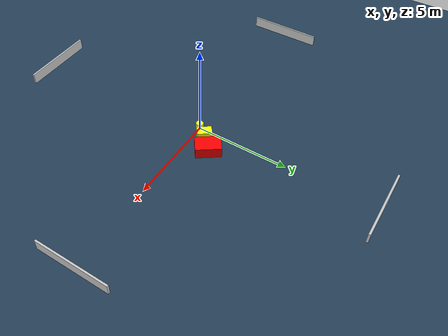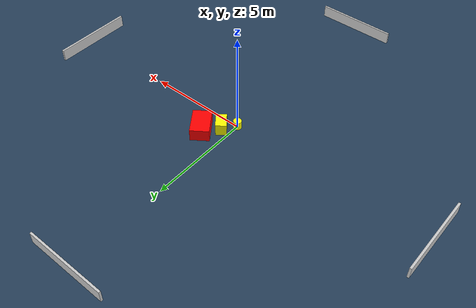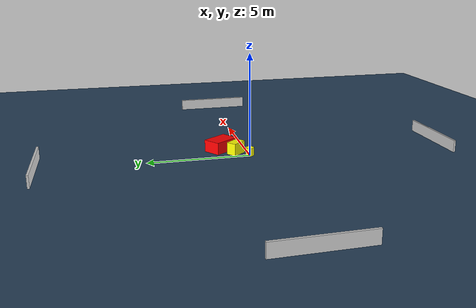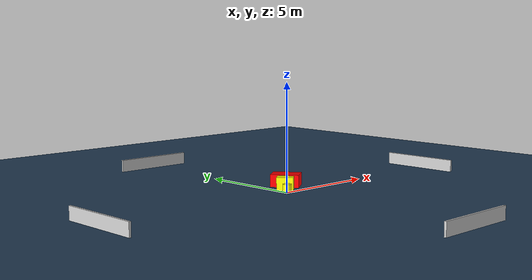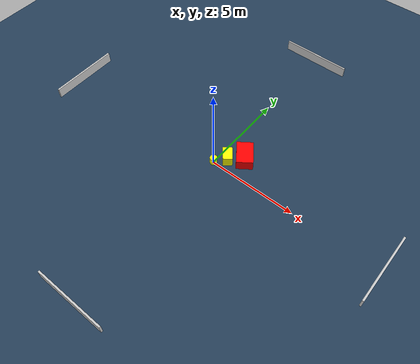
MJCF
<?xml version="1.0" ?>
<mujoco model="generated_environment">
  <option timestep="0.01" integrator="RK4" cone="elliptic"/>
  <default>
    <geom density="1"/>
  </default>
  <asset>
    <texture builtin="gradient" height="3072" name="skybox" rgb1="0.3 0.5 0.7" rgb2="0 0 0" type="skybox" width="512"/>
    <texture builtin="checker" height="300" name="groundplane" rgb1="0.2 0.3 0.4" rgb2="0.1 0.2 0.3" type="2d" width="300"/>
    <material name="groundplane" reflectance="0.2" texrepeat="5 5" texture="groundplane"/>
  </asset>
  <worldbody>
    <light dir="0 0 -1" directional="true" pos="0 0 1.5"/>
    <geom condim="3" friction="0.5 0.005 0.001" material="groundplane" name="floor" pos="0 0 0" size="0 0 0.05" type="plane"/>
    <body name="walls">
      <geom name="wall_1" condim="4" pos="-10.0 0.0 0.3" rgba="0.800000011920929 0.800000011920929 0.800000011920929 1.0" size="0.05 2.0 0.3" type="box"/>
      <geom name="wall_2" condim="4" pos="10.0 0.0 0.3" rgba="0.800000011920929 0.800000011920929 0.800000011920929 1.0" size="0.05 2.0 0.3" type="box"/>
      <geom name="wall_3" condim="4" pos="0.0 -10.0 0.3" rgba="0.800000011920929 0.800000011920929 0.800000011920929 1.0" size="2.0 0.05 0.3" type="box"/>
      <geom name="wall_4" condim="4" pos="0.0 10.0 0.3" rgba="0.800000011920929 0.800000011920929 0.800000011920929 1.0" size="2.0 0.05 0.3" type="box"/>
    </body>
    <body name="robot">
      <joint name="joint_x" type="slide" pos="0 0 0" axis="1 0 0"/>
      <joint name="joint_y" type="slide" pos="0 0 0" axis="0 1 0"/>
      <geom name="robot" type="cylinder" pos="0.0 0.0 0.2" size="0.2 0.2 0.0" mass="5.0" friction="1.0 0.005 0.0001" condim="4" rgba="1.0 1.0 0.0 1.0"/>
    </body>
    <body name="obstacle_1_movable">
      <geom name="obstacle_1_movable" condim="4" pos="0.4792629306156843 0.5890366056791674 0.3" euler="0 0 219.11550245320274" friction="0.0 0.005 0.001" rgba="1.0 1.0 0.0 1.0" size="0.25543933052638296 0.3898436351888105 0.3" type="box" mass="0.1"/>
      <joint type="free"/>
    </body>
    <body name="obstacle_2_static">
      <geom name="obstacle_2_static" condim="4" pos="1.1466223094392165 1.219870650198488 0.3" euler="0 0 35.65550059330234" friction="0.0 0.005 0.001" rgba="1.0 0.0 0.0 1.0" size="0.45149734194258123 0.6760412175114303 0.3" type="box"/>
    </body>
  </worldbody>
  <actuator>
    <motor name="actuator_x" joint="joint_x" gear="1" ctrlrange="-1 1"/>
    <motor name="actuator_y" joint="joint_y" gear="1" ctrlrange="-1 1"/>
  </actuator>
</mujoco>
